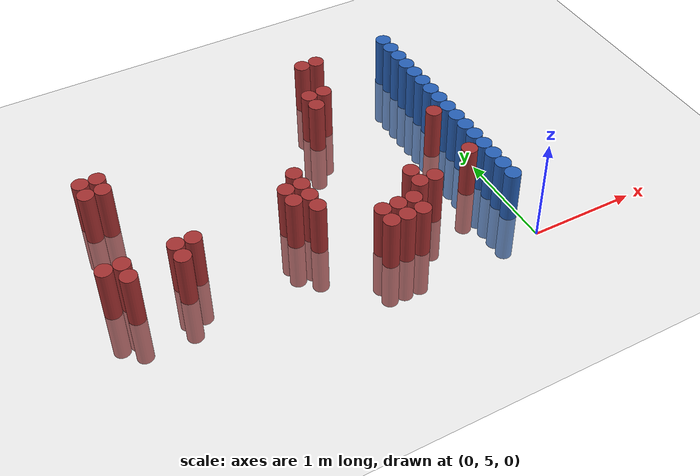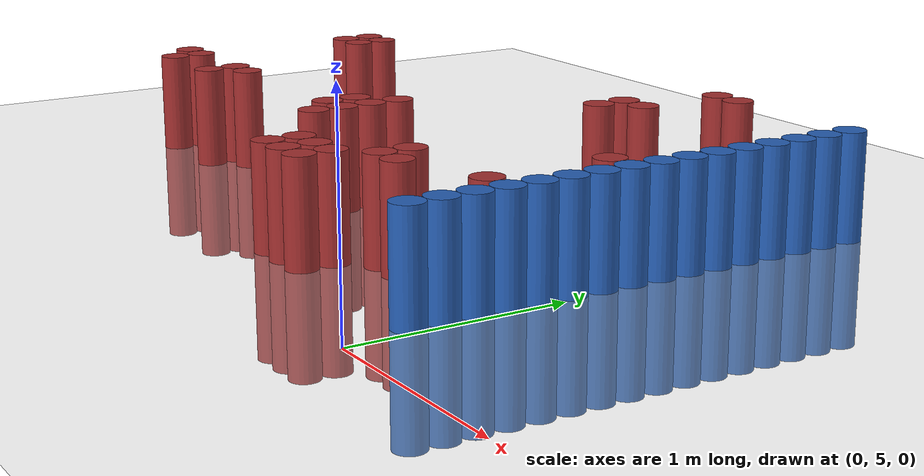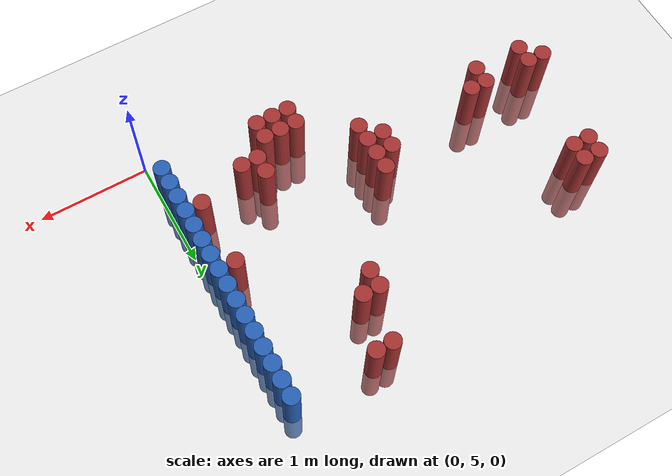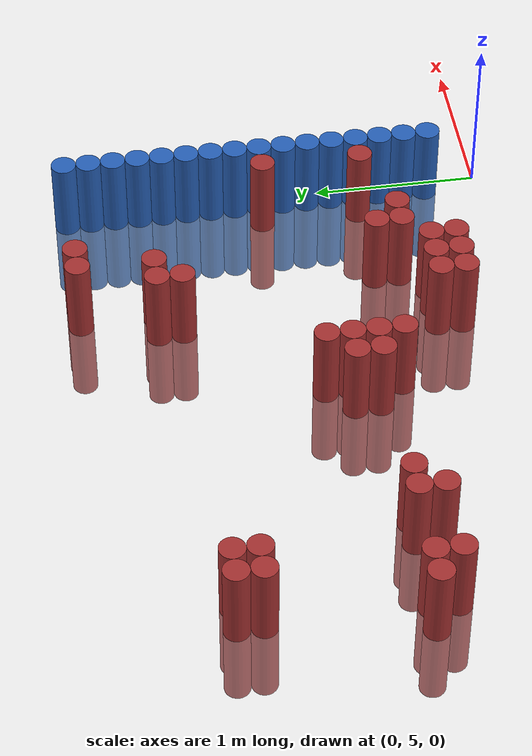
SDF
<sdf version="1.6">
 <world name="default">
  <model name="ground_plane">
   <static>1</static>
   <link name="link">
    <collision name="collision">
     <geometry><plane><normal>0 0 1</normal><size>100 100</size></plane></geometry>
     <surface><friction><ode><mu>100</mu><mu2>50</mu2></ode></friction></surface>
    </collision>
    <visual name="visual">
     <cast_shadows>0</cast_shadows>
     <geometry><plane><normal>0 0 1</normal><size>100 100</size></plane></geometry>
     <material>
      <script><uri>file://media/materials/scripts/gazebo.material</uri><name>Gazebo/Grey</name></script>
     </material>
    </visual>
   </link>
  </model>
  <model name="unit_cylinder_147">
   <static>1</static>
   <pose>-3.525000 5.925000 0.000000 0.000000 0.000000 0.000000</pose>
   <link name="link">
    <inertial>
     <mass>1</mass>
     <inertia><ixx>0.145833</ixx><ixy>0</ixy><ixz>0</ixz><iyy>0.145833</iyy><iyz>0</iyz><izz>0.125</izz></inertia>
    </inertial>
    <collision name="collision">
     <geometry><cylinder><radius>0.075000</radius><length>1</length></cylinder></geometry>
    </collision>
    <visual name="visual">
     <geometry><cylinder><radius>0.075000</radius><length>1</length></cylinder></geometry>
     <material>
      <ambient>0.648000 0.192000 0.192000 1</ambient>
      <diffuse>0.648000 0.192000 0.192000 1</diffuse>
     </material>
     <material>
      <script><name>Gazebo/Grey</name><uri>file://media/materials/scripts/gazebo.material</uri></script>
     </material>
    </visual>
   </link>
  </model>
  <model name="unit_cylinder_150">
   <static>1</static>
   <pose>-3.375000 5.775000 0.000000 0.000000 0.000000 0.000000</pose>
   <link name="link">
    <inertial>
     <mass>1</mass>
     <inertia><ixx>0.145833</ixx><ixy>0</ixy><ixz>0</ixz><iyy>0.145833</iyy><iyz>0</iyz><izz>0.125</izz></inertia>
    </inertial>
    <collision name="collision">
     <geometry><cylinder><radius>0.075000</radius><length>1</length></cylinder></geometry>
    </collision>
    <visual name="visual">
     <geometry><cylinder><radius>0.075000</radius><length>1</length></cylinder></geometry>
     <material>
      <ambient>0.648000 0.192000 0.192000 1</ambient>
      <diffuse>0.648000 0.192000 0.192000 1</diffuse>
     </material>
     <material>
      <script><name>Gazebo/Grey</name><uri>file://media/materials/scripts/gazebo.material</uri></script>
     </material>
    </visual>
   </link>
  </model>
  <model name="unit_cylinder_151">
   <static>1</static>
   <pose>-3.375000 5.925000 0.000000 0.000000 0.000000 0.000000</pose>
   <link name="link">
    <inertial>
     <mass>1</mass>
     <inertia><ixx>0.145833</ixx><ixy>0</ixy><ixz>0</ixz><iyy>0.145833</iyy><iyz>0</iyz><izz>0.125</izz></inertia>
    </inertial>
    <collision name="collision">
     <geometry><cylinder><radius>0.075000</radius><length>1</length></cylinder></geometry>
    </collision>
    <visual name="visual">
     <geometry><cylinder><radius>0.075000</radius><length>1</length></cylinder></geometry>
     <material>
      <ambient>0.648000 0.192000 0.192000 1</ambient>
      <diffuse>0.648000 0.192000 0.192000 1</diffuse>
     </material>
     <material>
      <script><name>Gazebo/Grey</name><uri>file://media/materials/scripts/gazebo.material</uri></script>
     </material>
    </visual>
   </link>
  </model>
  <model name="unit_cylinder_152">
   <static>1</static>
   <pose>-3.375000 6.825000 0.000000 0.000000 0.000000 0.000000</pose>
   <link name="link">
    <inertial>
     <mass>1</mass>
     <inertia><ixx>0.145833</ixx><ixy>0</ixy><ixz>0</ixz><iyy>0.145833</iyy><iyz>0</iyz><izz>0.125</izz></inertia>
    </inertial>
    <collision name="collision">
     <geometry><cylinder><radius>0.075000</radius><length>1</length></cylinder></geometry>
    </collision>
    <visual name="visual">
     <geometry><cylinder><radius>0.075000</radius><length>1</length></cylinder></geometry>
     <material>
      <ambient>0.648000 0.192000 0.192000 1</ambient>
      <diffuse>0.648000 0.192000 0.192000 1</diffuse>
     </material>
     <material>
      <script><name>Gazebo/Grey</name><uri>file://media/materials/scripts/gazebo.material</uri></script>
     </material>
    </visual>
   </link>
  </model>
  <model name="unit_cylinder_153">
   <static>1</static>
   <pose>-3.375000 6.975000 0.000000 0.000000 0.000000 0.000000</pose>
   <link name="link">
    <inertial>
     <mass>1</mass>
     <inertia><ixx>0.145833</ixx><ixy>0</ixy><ixz>0</ixz><iyy>0.145833</iyy><iyz>0</iyz><izz>0.125</izz></inertia>
    </inertial>
    <collision name="collision">
     <geometry><cylinder><radius>0.075000</radius><length>1</length></cylinder></geometry>
    </collision>
    <visual name="visual">
     <geometry><cylinder><radius>0.075000</radius><length>1</length></cylinder></geometry>
     <material>
      <ambient>0.648000 0.192000 0.192000 1</ambient>
      <diffuse>0.648000 0.192000 0.192000 1</diffuse>
     </material>
     <material>
      <script><name>Gazebo/Grey</name><uri>file://media/materials/scripts/gazebo.material</uri></script>
     </material>
    </visual>
   </link>
  </model>
  <model name="unit_cylinder_155">
   <static>1</static>
   <pose>-3.225000 6.825000 0.000000 0.000000 0.000000 0.000000</pose>
   <link name="link">
    <inertial>
     <mass>1</mass>
     <inertia><ixx>0.145833</ixx><ixy>0</ixy><ixz>0</ixz><iyy>0.145833</iyy><iyz>0</iyz><izz>0.125</izz></inertia>
    </inertial>
    <collision name="collision">
     <geometry><cylinder><radius>0.075000</radius><length>1</length></cylinder></geometry>
    </collision>
    <visual name="visual">
     <geometry><cylinder><radius>0.075000</radius><length>1</length></cylinder></geometry>
     <material>
      <ambient>0.648000 0.192000 0.192000 1</ambient>
      <diffuse>0.648000 0.192000 0.192000 1</diffuse>
     </material>
     <material>
      <script><name>Gazebo/Grey</name><uri>file://media/materials/scripts/gazebo.material</uri></script>
     </material>
    </visual>
   </link>
  </model>
  <model name="unit_cylinder_156">
   <static>1</static>
   <pose>-3.225000 6.975000 0.000000 0.000000 0.000000 0.000000</pose>
   <link name="link">
    <inertial>
     <mass>1</mass>
     <inertia><ixx>0.145833</ixx><ixy>0</ixy><ixz>0</ixz><iyy>0.145833</iyy><iyz>0</iyz><izz>0.125</izz></inertia>
    </inertial>
    <collision name="collision">
     <geometry><cylinder><radius>0.075000</radius><length>1</length></cylinder></geometry>
    </collision>
    <visual name="visual">
     <geometry><cylinder><radius>0.075000</radius><length>1</length></cylinder></geometry>
     <material>
      <ambient>0.648000 0.192000 0.192000 1</ambient>
      <diffuse>0.648000 0.192000 0.192000 1</diffuse>
     </material>
     <material>
      <script><name>Gazebo/Grey</name><uri>file://media/materials/scripts/gazebo.material</uri></script>
     </material>
    </visual>
   </link>
  </model>
  <model name="unit_cylinder_157">
   <static>1</static>
   <pose>-2.925000 5.775000 0.000000 0.000000 0.000000 0.000000</pose>
   <link name="link">
    <inertial>
     <mass>1</mass>
     <inertia><ixx>0.145833</ixx><ixy>0</ixy><ixz>0</ixz><iyy>0.145833</iyy><iyz>0</iyz><izz>0.125</izz></inertia>
    </inertial>
    <collision name="collision">
     <geometry><cylinder><radius>0.075000</radius><length>1</length></cylinder></geometry>
    </collision>
    <visual name="visual">
     <geometry><cylinder><radius>0.075000</radius><length>1</length></cylinder></geometry>
     <material>
      <ambient>0.648000 0.192000 0.192000 1</ambient>
      <diffuse>0.648000 0.192000 0.192000 1</diffuse>
     </material>
     <material>
      <script><name>Gazebo/Grey</name><uri>file://media/materials/scripts/gazebo.material</uri></script>
     </material>
    </visual>
   </link>
  </model>
  <model name="unit_cylinder_158">
   <static>1</static>
   <pose>-2.925000 5.925000 0.000000 0.000000 0.000000 0.000000</pose>
   <link name="link">
    <inertial>
     <mass>1</mass>
     <inertia><ixx>0.145833</ixx><ixy>0</ixy><ixz>0</ixz><iyy>0.145833</iyy><iyz>0</iyz><izz>0.125</izz></inertia>
    </inertial>
    <collision name="collision">
     <geometry><cylinder><radius>0.075000</radius><length>1</length></cylinder></geometry>
    </collision>
    <visual name="visual">
     <geometry><cylinder><radius>0.075000</radius><length>1</length></cylinder></geometry>
     <material>
      <ambient>0.648000 0.192000 0.192000 1</ambient>
      <diffuse>0.648000 0.192000 0.192000 1</diffuse>
     </material>
     <material>
      <script><name>Gazebo/Grey</name><uri>file://media/materials/scripts/gazebo.material</uri></script>
     </material>
    </visual>
   </link>
  </model>
  <model name="unit_cylinder_159">
   <static>1</static>
   <pose>-2.775000 5.925000 0.000000 0.000000 0.000000 0.000000</pose>
   <link name="link">
    <inertial>
     <mass>1</mass>
     <inertia><ixx>0.145833</ixx><ixy>0</ixy><ixz>0</ixz><iyy>0.145833</iyy><iyz>0</iyz><izz>0.125</izz></inertia>
    </inertial>
    <collision name="collision">
     <geometry><cylinder><radius>0.075000</radius><length>1</length></cylinder></geometry>
    </collision>
    <visual name="visual">
     <geometry><cylinder><radius>0.075000</radius><length>1</length></cylinder></geometry>
     <material>
      <ambient>0.648000 0.192000 0.192000 1</ambient>
      <diffuse>0.648000 0.192000 0.192000 1</diffuse>
     </material>
     <material>
      <script><name>Gazebo/Grey</name><uri>file://media/materials/scripts/gazebo.material</uri></script>
     </material>
    </visual>
   </link>
  </model>
  <model name="unit_cylinder_161">
   <static>1</static>
   <pose>-1.875000 5.925000 0.000000 0.000000 0.000000 0.000000</pose>
   <link name="link">
    <inertial>
     <mass>1</mass>
     <inertia><ixx>0.145833</ixx><ixy>0</ixy><ixz>0</ixz><iyy>0.145833</iyy><iyz>0</iyz><izz>0.125</izz></inertia>
    </inertial>
    <collision name="collision">
     <geometry><cylinder><radius>0.075000</radius><length>1</length></cylinder></geometry>
    </collision>
    <visual name="visual">
     <geometry><cylinder><radius>0.075000</radius><length>1</length></cylinder></geometry>
     <material>
      <ambient>0.648000 0.192000 0.192000 1</ambient>
      <diffuse>0.648000 0.192000 0.192000 1</diffuse>
     </material>
     <material>
      <script><name>Gazebo/Grey</name><uri>file://media/materials/scripts/gazebo.material</uri></script>
     </material>
    </visual>
   </link>
  </model>
  <model name="unit_cylinder_162">
   <static>1</static>
   <pose>-1.875000 6.075000 0.000000 0.000000 0.000000 0.000000</pose>
   <link name="link">
    <inertial>
     <mass>1</mass>
     <inertia><ixx>0.145833</ixx><ixy>0</ixy><ixz>0</ixz><iyy>0.145833</iyy><iyz>0</iyz><izz>0.125</izz></inertia>
    </inertial>
    <collision name="collision">
     <geometry><cylinder><radius>0.075000</radius><length>1</length></cylinder></geometry>
    </collision>
    <visual name="visual">
     <geometry><cylinder><radius>0.075000</radius><length>1</length></cylinder></geometry>
     <material>
      <ambient>0.648000 0.192000 0.192000 1</ambient>
      <diffuse>0.648000 0.192000 0.192000 1</diffuse>
     </material>
     <material>
      <script><name>Gazebo/Grey</name><uri>file://media/materials/scripts/gazebo.material</uri></script>
     </material>
    </visual>
   </link>
  </model>
  <model name="unit_cylinder_166">
   <static>1</static>
   <pose>-1.725000 5.775000 0.000000 0.000000 0.000000 0.000000</pose>
   <link name="link">
    <inertial>
     <mass>1</mass>
     <inertia><ixx>0.145833</ixx><ixy>0</ixy><ixz>0</ixz><iyy>0.145833</iyy><iyz>0</iyz><izz>0.125</izz></inertia>
    </inertial>
    <collision name="collision">
     <geometry><cylinder><radius>0.075000</radius><length>1</length></cylinder></geometry>
    </collision>
    <visual name="visual">
     <geometry><cylinder><radius>0.075000</radius><length>1</length></cylinder></geometry>
     <material>
      <ambient>0.648000 0.192000 0.192000 1</ambient>
      <diffuse>0.648000 0.192000 0.192000 1</diffuse>
     </material>
     <material>
      <script><name>Gazebo/Grey</name><uri>file://media/materials/scripts/gazebo.material</uri></script>
     </material>
    </visual>
   </link>
  </model>
  <model name="unit_cylinder_167">
   <static>1</static>
   <pose>-1.725000 5.925000 0.000000 0.000000 0.000000 0.000000</pose>
   <link name="link">
    <inertial>
     <mass>1</mass>
     <inertia><ixx>0.145833</ixx><ixy>0</ixy><ixz>0</ixz><iyy>0.145833</iyy><iyz>0</iyz><izz>0.125</izz></inertia>
    </inertial>
    <collision name="collision">
     <geometry><cylinder><radius>0.075000</radius><length>1</length></cylinder></geometry>
    </collision>
    <visual name="visual">
     <geometry><cylinder><radius>0.075000</radius><length>1</length></cylinder></geometry>
     <material>
      <ambient>0.648000 0.192000 0.192000 1</ambient>
      <diffuse>0.648000 0.192000 0.192000 1</diffuse>
     </material>
     <material>
      <script><name>Gazebo/Grey</name><uri>file://media/materials/scripts/gazebo.material</uri></script>
     </material>
    </visual>
   </link>
  </model>
  <model name="unit_cylinder_168">
   <static>1</static>
   <pose>-1.725000 6.075000 0.000000 0.000000 0.000000 0.000000</pose>
   <link name="link">
    <inertial>
     <mass>1</mass>
     <inertia><ixx>0.145833</ixx><ixy>0</ixy><ixz>0</ixz><iyy>0.145833</iyy><iyz>0</iyz><izz>0.125</izz></inertia>
    </inertial>
    <collision name="collision">
     <geometry><cylinder><radius>0.075000</radius><length>1</length></cylinder></geometry>
    </collision>
    <visual name="visual">
     <geometry><cylinder><radius>0.075000</radius><length>1</length></cylinder></geometry>
     <material>
      <ambient>0.648000 0.192000 0.192000 1</ambient>
      <diffuse>0.648000 0.192000 0.192000 1</diffuse>
     </material>
     <material>
      <script><name>Gazebo/Grey</name><uri>file://media/materials/scripts/gazebo.material</uri></script>
     </material>
    </visual>
   </link>
  </model>
  <model name="unit_cylinder_169">
   <static>1</static>
   <pose>-1.725000 6.225000 0.000000 0.000000 0.000000 0.000000</pose>
   <link name="link">
    <inertial>
     <mass>1</mass>
     <inertia><ixx>0.145833</ixx><ixy>0</ixy><ixz>0</ixz><iyy>0.145833</iyy><iyz>0</iyz><izz>0.125</izz></inertia>
    </inertial>
    <collision name="collision">
     <geometry><cylinder><radius>0.075000</radius><length>1</length></cylinder></geometry>
    </collision>
    <visual name="visual">
     <geometry><cylinder><radius>0.075000</radius><length>1</length></cylinder></geometry>
     <material>
      <ambient>0.648000 0.192000 0.192000 1</ambient>
      <diffuse>0.648000 0.192000 0.192000 1</diffuse>
     </material>
     <material>
      <script><name>Gazebo/Grey</name><uri>file://media/materials/scripts/gazebo.material</uri></script>
     </material>
    </visual>
   </link>
  </model>
  <model name="unit_cylinder_173">
   <static>1</static>
   <pose>-1.275000 5.325000 0.000000 0.000000 0.000000 0.000000</pose>
   <link name="link">
    <inertial>
     <mass>1</mass>
     <inertia><ixx>0.145833</ixx><ixy>0</ixy><ixz>0</ixz><iyy>0.145833</iyy><iyz>0</iyz><izz>0.125</izz></inertia>
    </inertial>
    <collision name="collision">
     <geometry><cylinder><radius>0.075000</radius><length>1</length></cylinder></geometry>
    </collision>
    <visual name="visual">
     <geometry><cylinder><radius>0.075000</radius><length>1</length></cylinder></geometry>
     <material>
      <ambient>0.648000 0.192000 0.192000 1</ambient>
      <diffuse>0.648000 0.192000 0.192000 1</diffuse>
     </material>
     <material>
      <script><name>Gazebo/Grey</name><uri>file://media/materials/scripts/gazebo.material</uri></script>
     </material>
    </visual>
   </link>
  </model>
  <model name="unit_cylinder_174">
   <static>1</static>
   <pose>-1.275000 5.475000 0.000000 0.000000 0.000000 0.000000</pose>
   <link name="link">
    <inertial>
     <mass>1</mass>
     <inertia><ixx>0.145833</ixx><ixy>0</ixy><ixz>0</ixz><iyy>0.145833</iyy><iyz>0</iyz><izz>0.125</izz></inertia>
    </inertial>
    <collision name="collision">
     <geometry><cylinder><radius>0.075000</radius><length>1</length></cylinder></geometry>
    </collision>
    <visual name="visual">
     <geometry><cylinder><radius>0.075000</radius><length>1</length></cylinder></geometry>
     <material>
      <ambient>0.648000 0.192000 0.192000 1</ambient>
      <diffuse>0.648000 0.192000 0.192000 1</diffuse>
     </material>
     <material>
      <script><name>Gazebo/Grey</name><uri>file://media/materials/scripts/gazebo.material</uri></script>
     </material>
    </visual>
   </link>
  </model>
  <model name="unit_cylinder_176">
   <static>1</static>
   <pose>-1.125000 5.325000 0.000000 0.000000 0.000000 0.000000</pose>
   <link name="link">
    <inertial>
     <mass>1</mass>
     <inertia><ixx>0.145833</ixx><ixy>0</ixy><ixz>0</ixz><iyy>0.145833</iyy><iyz>0</iyz><izz>0.125</izz></inertia>
    </inertial>
    <collision name="collision">
     <geometry><cylinder><radius>0.075000</radius><length>1</length></cylinder></geometry>
    </collision>
    <visual name="visual">
     <geometry><cylinder><radius>0.075000</radius><length>1</length></cylinder></geometry>
     <material>
      <ambient>0.648000 0.192000 0.192000 1</ambient>
      <diffuse>0.648000 0.192000 0.192000 1</diffuse>
     </material>
     <material>
      <script><name>Gazebo/Grey</name><uri>file://media/materials/scripts/gazebo.material</uri></script>
     </material>
    </visual>
   </link>
  </model>
  <model name="unit_cylinder_177">
   <static>1</static>
   <pose>-1.125000 5.475000 0.000000 0.000000 0.000000 0.000000</pose>
   <link name="link">
    <inertial>
     <mass>1</mass>
     <inertia><ixx>0.145833</ixx><ixy>0</ixy><ixz>0</ixz><iyy>0.145833</iyy><iyz>0</iyz><izz>0.125</izz></inertia>
    </inertial>
    <collision name="collision">
     <geometry><cylinder><radius>0.075000</radius><length>1</length></cylinder></geometry>
    </collision>
    <visual name="visual">
     <geometry><cylinder><radius>0.075000</radius><length>1</length></cylinder></geometry>
     <material>
      <ambient>0.648000 0.192000 0.192000 1</ambient>
      <diffuse>0.648000 0.192000 0.192000 1</diffuse>
     </material>
     <material>
      <script><name>Gazebo/Grey</name><uri>file://media/materials/scripts/gazebo.material</uri></script>
     </material>
    </visual>
   </link>
  </model>
  <model name="unit_cylinder_178">
   <static>1</static>
   <pose>-1.125000 6.975000 0.000000 0.000000 0.000000 0.000000</pose>
   <link name="link">
    <inertial>
     <mass>1</mass>
     <inertia><ixx>0.145833</ixx><ixy>0</ixy><ixz>0</ixz><iyy>0.145833</iyy><iyz>0</iyz><izz>0.125</izz></inertia>
    </inertial>
    <collision name="collision">
     <geometry><cylinder><radius>0.075000</radius><length>1</length></cylinder></geometry>
    </collision>
    <visual name="visual">
     <geometry><cylinder><radius>0.075000</radius><length>1</length></cylinder></geometry>
     <material>
      <ambient>0.648000 0.192000 0.192000 1</ambient>
      <diffuse>0.648000 0.192000 0.192000 1</diffuse>
     </material>
     <material>
      <script><name>Gazebo/Grey</name><uri>file://media/materials/scripts/gazebo.material</uri></script>
     </material>
    </visual>
   </link>
  </model>
  <model name="unit_cylinder_179">
   <static>1</static>
   <pose>-1.125000 7.125000 0.000000 0.000000 0.000000 0.000000</pose>
   <link name="link">
    <inertial>
     <mass>1</mass>
     <inertia><ixx>0.145833</ixx><ixy>0</ixy><ixz>0</ixz><iyy>0.145833</iyy><iyz>0</iyz><izz>0.125</izz></inertia>
    </inertial>
    <collision name="collision">
     <geometry><cylinder><radius>0.075000</radius><length>1</length></cylinder></geometry>
    </collision>
    <visual name="visual">
     <geometry><cylinder><radius>0.075000</radius><length>1</length></cylinder></geometry>
     <material>
      <ambient>0.648000 0.192000 0.192000 1</ambient>
      <diffuse>0.648000 0.192000 0.192000 1</diffuse>
     </material>
     <material>
      <script><name>Gazebo/Grey</name><uri>file://media/materials/scripts/gazebo.material</uri></script>
     </material>
    </visual>
   </link>
  </model>
  <model name="unit_cylinder_183">
   <static>1</static>
   <pose>-0.975000 5.325000 0.000000 0.000000 0.000000 0.000000</pose>
   <link name="link">
    <inertial>
     <mass>1</mass>
     <inertia><ixx>0.145833</ixx><ixy>0</ixy><ixz>0</ixz><iyy>0.145833</iyy><iyz>0</iyz><izz>0.125</izz></inertia>
    </inertial>
    <collision name="collision">
     <geometry><cylinder><radius>0.075000</radius><length>1</length></cylinder></geometry>
    </collision>
    <visual name="visual">
     <geometry><cylinder><radius>0.075000</radius><length>1</length></cylinder></geometry>
     <material>
      <ambient>0.648000 0.192000 0.192000 1</ambient>
      <diffuse>0.648000 0.192000 0.192000 1</diffuse>
     </material>
     <material>
      <script><name>Gazebo/Grey</name><uri>file://media/materials/scripts/gazebo.material</uri></script>
     </material>
    </visual>
   </link>
  </model>
  <model name="unit_cylinder_184">
   <static>1</static>
   <pose>-0.975000 5.475000 0.000000 0.000000 0.000000 0.000000</pose>
   <link name="link">
    <inertial>
     <mass>1</mass>
     <inertia><ixx>0.145833</ixx><ixy>0</ixy><ixz>0</ixz><iyy>0.145833</iyy><iyz>0</iyz><izz>0.125</izz></inertia>
    </inertial>
    <collision name="collision">
     <geometry><cylinder><radius>0.075000</radius><length>1</length></cylinder></geometry>
    </collision>
    <visual name="visual">
     <geometry><cylinder><radius>0.075000</radius><length>1</length></cylinder></geometry>
     <material>
      <ambient>0.648000 0.192000 0.192000 1</ambient>
      <diffuse>0.648000 0.192000 0.192000 1</diffuse>
     </material>
     <material>
      <script><name>Gazebo/Grey</name><uri>file://media/materials/scripts/gazebo.material</uri></script>
     </material>
    </visual>
   </link>
  </model>
  <model name="unit_cylinder_185">
   <static>1</static>
   <pose>-0.975000 7.125000 0.000000 0.000000 0.000000 0.000000</pose>
   <link name="link">
    <inertial>
     <mass>1</mass>
     <inertia><ixx>0.145833</ixx><ixy>0</ixy><ixz>0</ixz><iyy>0.145833</iyy><iyz>0</iyz><izz>0.125</izz></inertia>
    </inertial>
    <collision name="collision">
     <geometry><cylinder><radius>0.075000</radius><length>1</length></cylinder></geometry>
    </collision>
    <visual name="visual">
     <geometry><cylinder><radius>0.075000</radius><length>1</length></cylinder></geometry>
     <material>
      <ambient>0.648000 0.192000 0.192000 1</ambient>
      <diffuse>0.648000 0.192000 0.192000 1</diffuse>
     </material>
     <material>
      <script><name>Gazebo/Grey</name><uri>file://media/materials/scripts/gazebo.material</uri></script>
     </material>
    </visual>
   </link>
  </model>
  <model name="unit_cylinder_186">
   <static>1</static>
   <pose>-0.975000 7.575000 0.000000 0.000000 0.000000 0.000000</pose>
   <link name="link">
    <inertial>
     <mass>1</mass>
     <inertia><ixx>0.145833</ixx><ixy>0</ixy><ixz>0</ixz><iyy>0.145833</iyy><iyz>0</iyz><izz>0.125</izz></inertia>
    </inertial>
    <collision name="collision">
     <geometry><cylinder><radius>0.075000</radius><length>1</length></cylinder></geometry>
    </collision>
    <visual name="visual">
     <geometry><cylinder><radius>0.075000</radius><length>1</length></cylinder></geometry>
     <material>
      <ambient>0.648000 0.192000 0.192000 1</ambient>
      <diffuse>0.648000 0.192000 0.192000 1</diffuse>
     </material>
     <material>
      <script><name>Gazebo/Grey</name><uri>file://media/materials/scripts/gazebo.material</uri></script>
     </material>
    </visual>
   </link>
  </model>
  <model name="unit_cylinder_194">
   <static>1</static>
   <pose>-0.825000 5.625000 0.000000 0.000000 0.000000 0.000000</pose>
   <link name="link">
    <inertial>
     <mass>1</mass>
     <inertia><ixx>0.145833</ixx><ixy>0</ixy><ixz>0</ixz><iyy>0.145833</iyy><iyz>0</iyz><izz>0.125</izz></inertia>
    </inertial>
    <collision name="collision">
     <geometry><cylinder><radius>0.075000</radius><length>1</length></cylinder></geometry>
    </collision>
    <visual name="visual">
     <geometry><cylinder><radius>0.075000</radius><length>1</length></cylinder></geometry>
     <material>
      <ambient>0.648000 0.192000 0.192000 1</ambient>
      <diffuse>0.648000 0.192000 0.192000 1</diffuse>
     </material>
     <material>
      <script><name>Gazebo/Grey</name><uri>file://media/materials/scripts/gazebo.material</uri></script>
     </material>
    </visual>
   </link>
  </model>
  <model name="unit_cylinder_195">
   <static>1</static>
   <pose>-0.825000 5.775000 0.000000 0.000000 0.000000 0.000000</pose>
   <link name="link">
    <inertial>
     <mass>1</mass>
     <inertia><ixx>0.145833</ixx><ixy>0</ixy><ixz>0</ixz><iyy>0.145833</iyy><iyz>0</iyz><izz>0.125</izz></inertia>
    </inertial>
    <collision name="collision">
     <geometry><cylinder><radius>0.075000</radius><length>1</length></cylinder></geometry>
    </collision>
    <visual name="visual">
     <geometry><cylinder><radius>0.075000</radius><length>1</length></cylinder></geometry>
     <material>
      <ambient>0.648000 0.192000 0.192000 1</ambient>
      <diffuse>0.648000 0.192000 0.192000 1</diffuse>
     </material>
     <material>
      <script><name>Gazebo/Grey</name><uri>file://media/materials/scripts/gazebo.material</uri></script>
     </material>
    </visual>
   </link>
  </model>
  <model name="unit_cylinder_196">
   <static>1</static>
   <pose>-0.825000 7.575000 0.000000 0.000000 0.000000 0.000000</pose>
   <link name="link">
    <inertial>
     <mass>1</mass>
     <inertia><ixx>0.145833</ixx><ixy>0</ixy><ixz>0</ixz><iyy>0.145833</iyy><iyz>0</iyz><izz>0.125</izz></inertia>
    </inertial>
    <collision name="collision">
     <geometry><cylinder><radius>0.075000</radius><length>1</length></cylinder></geometry>
    </collision>
    <visual name="visual">
     <geometry><cylinder><radius>0.075000</radius><length>1</length></cylinder></geometry>
     <material>
      <ambient>0.648000 0.192000 0.192000 1</ambient>
      <diffuse>0.648000 0.192000 0.192000 1</diffuse>
     </material>
     <material>
      <script><name>Gazebo/Grey</name><uri>file://media/materials/scripts/gazebo.material</uri></script>
     </material>
    </visual>
   </link>
  </model>
  <model name="unit_cylinder_202">
   <static>1</static>
   <pose>-0.675000 5.625000 0.000000 0.000000 0.000000 0.000000</pose>
   <link name="link">
    <inertial>
     <mass>1</mass>
     <inertia><ixx>0.145833</ixx><ixy>0</ixy><ixz>0</ixz><iyy>0.145833</iyy><iyz>0</iyz><izz>0.125</izz></inertia>
    </inertial>
    <collision name="collision">
     <geometry><cylinder><radius>0.075000</radius><length>1</length></cylinder></geometry>
    </collision>
    <visual name="visual">
     <geometry><cylinder><radius>0.075000</radius><length>1</length></cylinder></geometry>
     <material>
      <ambient>0.648000 0.192000 0.192000 1</ambient>
      <diffuse>0.648000 0.192000 0.192000 1</diffuse>
     </material>
     <material>
      <script><name>Gazebo/Grey</name><uri>file://media/materials/scripts/gazebo.material</uri></script>
     </material>
    </visual>
   </link>
  </model>
  <model name="unit_cylinder_207">
   <static>1</static>
   <pose>-0.225000 5.775000 0.000000 0.000000 0.000000 0.000000</pose>
   <link name="link">
    <inertial>
     <mass>1</mass>
     <inertia><ixx>0.145833</ixx><ixy>0</ixy><ixz>0</ixz><iyy>0.145833</iyy><iyz>0</iyz><izz>0.125</izz></inertia>
    </inertial>
    <collision name="collision">
     <geometry><cylinder><radius>0.075000</radius><length>1</length></cylinder></geometry>
    </collision>
    <visual name="visual">
     <geometry><cylinder><radius>0.075000</radius><length>1</length></cylinder></geometry>
     <material>
      <ambient>0.648000 0.192000 0.192000 1</ambient>
      <diffuse>0.648000 0.192000 0.192000 1</diffuse>
     </material>
     <material>
      <script><name>Gazebo/Grey</name><uri>file://media/materials/scripts/gazebo.material</uri></script>
     </material>
    </visual>
   </link>
  </model>
  <model name="unit_cylinder_208">
   <static>1</static>
   <pose>-0.225000 6.375000 0.000000 0.000000 0.000000 0.000000</pose>
   <link name="link">
    <inertial>
     <mass>1</mass>
     <inertia><ixx>0.145833</ixx><ixy>0</ixy><ixz>0</ixz><iyy>0.145833</iyy><iyz>0</iyz><izz>0.125</izz></inertia>
    </inertial>
    <collision name="collision">
     <geometry><cylinder><radius>0.075000</radius><length>1</length></cylinder></geometry>
    </collision>
    <visual name="visual">
     <geometry><cylinder><radius>0.075000</radius><length>1</length></cylinder></geometry>
     <material>
      <ambient>0.648000 0.192000 0.192000 1</ambient>
      <diffuse>0.648000 0.192000 0.192000 1</diffuse>
     </material>
     <material>
      <script><name>Gazebo/Grey</name><uri>file://media/materials/scripts/gazebo.material</uri></script>
     </material>
    </visual>
   </link>
  </model>
  <model name="unit_cylinder_215">
   <static>1</static>
   <pose>-0.075000 5.325000 0.000000 0.000000 0.000000 0.000000</pose>
   <link name="link">
    <inertial>
     <mass>1</mass>
     <inertia><ixx>0.145833</ixx><ixy>0</ixy><ixz>0</ixz><iyy>0.145833</iyy><iyz>0</iyz><izz>0.125</izz></inertia>
    </inertial>
    <collision name="collision">
     <geometry><cylinder><radius>0.075000</radius><length>1</length></cylinder></geometry>
    </collision>
    <visual name="visual">
     <geometry><cylinder><radius>0.075000</radius><length>1</length></cylinder></geometry>
     <material>
      <ambient>0.152000 0.379000 0.720000 1</ambient>
      <diffuse>0.152000 0.379000 0.720000 1</diffuse>
     </material>
     <material>
      <script><name>Gazebo/Grey</name><uri>file://media/materials/scripts/gazebo.material</uri></script>
     </material>
    </visual>
   </link>
  </model>
  <model name="unit_cylinder_216">
   <static>1</static>
   <pose>-0.075000 5.475000 0.000000 0.000000 0.000000 0.000000</pose>
   <link name="link">
    <inertial>
     <mass>1</mass>
     <inertia><ixx>0.145833</ixx><ixy>0</ixy><ixz>0</ixz><iyy>0.145833</iyy><iyz>0</iyz><izz>0.125</izz></inertia>
    </inertial>
    <collision name="collision">
     <geometry><cylinder><radius>0.075000</radius><length>1</length></cylinder></geometry>
    </collision>
    <visual name="visual">
     <geometry><cylinder><radius>0.075000</radius><length>1</length></cylinder></geometry>
     <material>
      <ambient>0.152000 0.379000 0.720000 1</ambient>
      <diffuse>0.152000 0.379000 0.720000 1</diffuse>
     </material>
     <material>
      <script><name>Gazebo/Grey</name><uri>file://media/materials/scripts/gazebo.material</uri></script>
     </material>
    </visual>
   </link>
  </model>
  <model name="unit_cylinder_217">
   <static>1</static>
   <pose>-0.075000 5.625000 0.000000 0.000000 0.000000 0.000000</pose>
   <link name="link">
    <inertial>
     <mass>1</mass>
     <inertia><ixx>0.145833</ixx><ixy>0</ixy><ixz>0</ixz><iyy>0.145833</iyy><iyz>0</iyz><izz>0.125</izz></inertia>
    </inertial>
    <collision name="collision">
     <geometry><cylinder><radius>0.075000</radius><length>1</length></cylinder></geometry>
    </collision>
    <visual name="visual">
     <geometry><cylinder><radius>0.075000</radius><length>1</length></cylinder></geometry>
     <material>
      <ambient>0.152000 0.379000 0.720000 1</ambient>
      <diffuse>0.152000 0.379000 0.720000 1</diffuse>
     </material>
     <material>
      <script><name>Gazebo/Grey</name><uri>file://media/materials/scripts/gazebo.material</uri></script>
     </material>
    </visual>
   </link>
  </model>
  <model name="unit_cylinder_218">
   <static>1</static>
   <pose>-0.075000 5.775000 0.000000 0.000000 0.000000 0.000000</pose>
   <link name="link">
    <inertial>
     <mass>1</mass>
     <inertia><ixx>0.145833</ixx><ixy>0</ixy><ixz>0</ixz><iyy>0.145833</iyy><iyz>0</iyz><izz>0.125</izz></inertia>
    </inertial>
    <collision name="collision">
     <geometry><cylinder><radius>0.075000</radius><length>1</length></cylinder></geometry>
    </collision>
    <visual name="visual">
     <geometry><cylinder><radius>0.075000</radius><length>1</length></cylinder></geometry>
     <material>
      <ambient>0.152000 0.379000 0.720000 1</ambient>
      <diffuse>0.152000 0.379000 0.720000 1</diffuse>
     </material>
     <material>
      <script><name>Gazebo/Grey</name><uri>file://media/materials/scripts/gazebo.material</uri></script>
     </material>
    </visual>
   </link>
  </model>
  <model name="unit_cylinder_219">
   <static>1</static>
   <pose>-0.075000 5.925000 0.000000 0.000000 0.000000 0.000000</pose>
   <link name="link">
    <inertial>
     <mass>1</mass>
     <inertia><ixx>0.145833</ixx><ixy>0</ixy><ixz>0</ixz><iyy>0.145833</iyy><iyz>0</iyz><izz>0.125</izz></inertia>
    </inertial>
    <collision name="collision">
     <geometry><cylinder><radius>0.075000</radius><length>1</length></cylinder></geometry>
    </collision>
    <visual name="visual">
     <geometry><cylinder><radius>0.075000</radius><length>1</length></cylinder></geometry>
     <material>
      <ambient>0.152000 0.379000 0.720000 1</ambient>
      <diffuse>0.152000 0.379000 0.720000 1</diffuse>
     </material>
     <material>
      <script><name>Gazebo/Grey</name><uri>file://media/materials/scripts/gazebo.material</uri></script>
     </material>
    </visual>
   </link>
  </model>
  <model name="unit_cylinder_220">
   <static>1</static>
   <pose>-0.075000 6.075000 0.000000 0.000000 0.000000 0.000000</pose>
   <link name="link">
    <inertial>
     <mass>1</mass>
     <inertia><ixx>0.145833</ixx><ixy>0</ixy><ixz>0</ixz><iyy>0.145833</iyy><iyz>0</iyz><izz>0.125</izz></inertia>
    </inertial>
    <collision name="collision">
     <geometry><cylinder><radius>0.075000</radius><length>1</length></cylinder></geometry>
    </collision>
    <visual name="visual">
     <geometry><cylinder><radius>0.075000</radius><length>1</length></cylinder></geometry>
     <material>
      <ambient>0.152000 0.379000 0.720000 1</ambient>
      <diffuse>0.152000 0.379000 0.720000 1</diffuse>
     </material>
     <material>
      <script><name>Gazebo/Grey</name><uri>file://media/materials/scripts/gazebo.material</uri></script>
     </material>
    </visual>
   </link>
  </model>
  <model name="unit_cylinder_221">
   <static>1</static>
   <pose>-0.075000 6.225000 0.000000 0.000000 0.000000 0.000000</pose>
   <link name="link">
    <inertial>
     <mass>1</mass>
     <inertia><ixx>0.145833</ixx><ixy>0</ixy><ixz>0</ixz><iyy>0.145833</iyy><iyz>0</iyz><izz>0.125</izz></inertia>
    </inertial>
    <collision name="collision">
     <geometry><cylinder><radius>0.075000</radius><length>1</length></cylinder></geometry>
    </collision>
    <visual name="visual">
     <geometry><cylinder><radius>0.075000</radius><length>1</length></cylinder></geometry>
     <material>
      <ambient>0.152000 0.379000 0.720000 1</ambient>
      <diffuse>0.152000 0.379000 0.720000 1</diffuse>
     </material>
     <material>
      <script><name>Gazebo/Grey</name><uri>file://media/materials/scripts/gazebo.material</uri></script>
     </material>
    </visual>
   </link>
  </model>
  <model name="unit_cylinder_222">
   <static>1</static>
   <pose>-0.075000 6.375000 0.000000 0.000000 0.000000 0.000000</pose>
   <link name="link">
    <inertial>
     <mass>1</mass>
     <inertia><ixx>0.145833</ixx><ixy>0</ixy><ixz>0</ixz><iyy>0.145833</iyy><iyz>0</iyz><izz>0.125</izz></inertia>
    </inertial>
    <collision name="collision">
     <geometry><cylinder><radius>0.075000</radius><length>1</length></cylinder></geometry>
    </collision>
    <visual name="visual">
     <geometry><cylinder><radius>0.075000</radius><length>1</length></cylinder></geometry>
     <material>
      <ambient>0.152000 0.379000 0.720000 1</ambient>
      <diffuse>0.152000 0.379000 0.720000 1</diffuse>
     </material>
     <material>
      <script><name>Gazebo/Grey</name><uri>file://media/materials/scripts/gazebo.material</uri></script>
     </material>
    </visual>
   </link>
  </model>
  <model name="unit_cylinder_223">
   <static>1</static>
   <pose>-0.075000 6.525000 0.000000 0.000000 0.000000 0.000000</pose>
   <link name="link">
    <inertial>
     <mass>1</mass>
     <inertia><ixx>0.145833</ixx><ixy>0</ixy><ixz>0</ixz><iyy>0.145833</iyy><iyz>0</iyz><izz>0.125</izz></inertia>
    </inertial>
    <collision name="collision">
     <geometry><cylinder><radius>0.075000</radius><length>1</length></cylinder></geometry>
    </collision>
    <visual name="visual">
     <geometry><cylinder><radius>0.075000</radius><length>1</length></cylinder></geometry>
     <material>
      <ambient>0.152000 0.379000 0.720000 1</ambient>
      <diffuse>0.152000 0.379000 0.720000 1</diffuse>
     </material>
     <material>
      <script><name>Gazebo/Grey</name><uri>file://media/materials/scripts/gazebo.material</uri></script>
     </material>
    </visual>
   </link>
  </model>
  <model name="unit_cylinder_224">
   <static>1</static>
   <pose>-0.075000 6.675000 0.000000 0.000000 0.000000 0.000000</pose>
   <link name="link">
    <inertial>
     <mass>1</mass>
     <inertia><ixx>0.145833</ixx><ixy>0</ixy><ixz>0</ixz><iyy>0.145833</iyy><iyz>0</iyz><izz>0.125</izz></inertia>
    </inertial>
    <collision name="collision">
     <geometry><cylinder><radius>0.075000</radius><length>1</length></cylinder></geometry>
    </collision>
    <visual name="visual">
     <geometry><cylinder><radius>0.075000</radius><length>1</length></cylinder></geometry>
     <material>
      <ambient>0.152000 0.379000 0.720000 1</ambient>
      <diffuse>0.152000 0.379000 0.720000 1</diffuse>
     </material>
     <material>
      <script><name>Gazebo/Grey</name><uri>file://media/materials/scripts/gazebo.material</uri></script>
     </material>
    </visual>
   </link>
  </model>
  <model name="unit_cylinder_225">
   <static>1</static>
   <pose>-0.075000 6.825000 0.000000 0.000000 0.000000 0.000000</pose>
   <link name="link">
    <inertial>
     <mass>1</mass>
     <inertia><ixx>0.145833</ixx><ixy>0</ixy><ixz>0</ixz><iyy>0.145833</iyy><iyz>0</iyz><izz>0.125</izz></inertia>
    </inertial>
    <collision name="collision">
     <geometry><cylinder><radius>0.075000</radius><length>1</length></cylinder></geometry>
    </collision>
    <visual name="visual">
     <geometry><cylinder><radius>0.075000</radius><length>1</length></cylinder></geometry>
     <material>
      <ambient>0.152000 0.379000 0.720000 1</ambient>
      <diffuse>0.152000 0.379000 0.720000 1</diffuse>
     </material>
     <material>
      <script><name>Gazebo/Grey</name><uri>file://media/materials/scripts/gazebo.material</uri></script>
     </material>
    </visual>
   </link>
  </model>
  <model name="unit_cylinder_226">
   <static>1</static>
   <pose>-0.075000 6.975000 0.000000 0.000000 0.000000 0.000000</pose>
   <link name="link">
    <inertial>
     <mass>1</mass>
     <inertia><ixx>0.145833</ixx><ixy>0</ixy><ixz>0</ixz><iyy>0.145833</iyy><iyz>0</iyz><izz>0.125</izz></inertia>
    </inertial>
    <collision name="collision">
     <geometry><cylinder><radius>0.075000</radius><length>1</length></cylinder></geometry>
    </collision>
    <visual name="visual">
     <geometry><cylinder><radius>0.075000</radius><length>1</length></cylinder></geometry>
     <material>
      <ambient>0.152000 0.379000 0.720000 1</ambient>
      <diffuse>0.152000 0.379000 0.720000 1</diffuse>
     </material>
     <material>
      <script><name>Gazebo/Grey</name><uri>file://media/materials/scripts/gazebo.material</uri></script>
     </material>
    </visual>
   </link>
  </model>
  <model name="unit_cylinder_227">
   <static>1</static>
   <pose>-0.075000 7.125000 0.000000 0.000000 0.000000 0.000000</pose>
   <link name="link">
    <inertial>
     <mass>1</mass>
     <inertia><ixx>0.145833</ixx><ixy>0</ixy><ixz>0</ixz><iyy>0.145833</iyy><iyz>0</iyz><izz>0.125</izz></inertia>
    </inertial>
    <collision name="collision">
     <geometry><cylinder><radius>0.075000</radius><length>1</length></cylinder></geometry>
    </collision>
    <visual name="visual">
     <geometry><cylinder><radius>0.075000</radius><length>1</length></cylinder></geometry>
     <material>
      <ambient>0.152000 0.379000 0.720000 1</ambient>
      <diffuse>0.152000 0.379000 0.720000 1</diffuse>
     </material>
     <material>
      <script><name>Gazebo/Grey</name><uri>file://media/materials/scripts/gazebo.material</uri></script>
     </material>
    </visual>
   </link>
  </model>
  <model name="unit_cylinder_228">
   <static>1</static>
   <pose>-0.075000 7.275000 0.000000 0.000000 0.000000 0.000000</pose>
   <link name="link">
    <inertial>
     <mass>1</mass>
     <inertia><ixx>0.145833</ixx><ixy>0</ixy><ixz>0</ixz><iyy>0.145833</iyy><iyz>0</iyz><izz>0.125</izz></inertia>
    </inertial>
    <collision name="collision">
     <geometry><cylinder><radius>0.075000</radius><length>1</length></cylinder></geometry>
    </collision>
    <visual name="visual">
     <geometry><cylinder><radius>0.075000</radius><length>1</length></cylinder></geometry>
     <material>
      <ambient>0.152000 0.379000 0.720000 1</ambient>
      <diffuse>0.152000 0.379000 0.720000 1</diffuse>
     </material>
     <material>
      <script><name>Gazebo/Grey</name><uri>file://media/materials/scripts/gazebo.material</uri></script>
     </material>
    </visual>
   </link>
  </model>
  <model name="unit_cylinder_229">
   <static>1</static>
   <pose>-0.075000 7.425000 0.000000 0.000000 0.000000 0.000000</pose>
   <link name="link">
    <inertial>
     <mass>1</mass>
     <inertia><ixx>0.145833</ixx><ixy>0</ixy><ixz>0</ixz><iyy>0.145833</iyy><iyz>0</iyz><izz>0.125</izz></inertia>
    </inertial>
    <collision name="collision">
     <geometry><cylinder><radius>0.075000</radius><length>1</length></cylinder></geometry>
    </collision>
    <visual name="visual">
     <geometry><cylinder><radius>0.075000</radius><length>1</length></cylinder></geometry>
     <material>
      <ambient>0.152000 0.379000 0.720000 1</ambient>
      <diffuse>0.152000 0.379000 0.720000 1</diffuse>
     </material>
     <material>
      <script><name>Gazebo/Grey</name><uri>file://media/materials/scripts/gazebo.material</uri></script>
     </material>
    </visual>
   </link>
  </model>
  <model name="unit_cylinder_230">
   <static>1</static>
   <pose>-0.075000 7.575000 0.000000 0.000000 0.000000 0.000000</pose>
   <link name="link">
    <inertial>
     <mass>1</mass>
     <inertia><ixx>0.145833</ixx><ixy>0</ixy><ixz>0</ixz><iyy>0.145833</iyy><iyz>0</iyz><izz>0.125</izz></inertia>
    </inertial>
    <collision name="collision">
     <geometry><cylinder><radius>0.075000</radius><length>1</length></cylinder></geometry>
    </collision>
    <visual name="visual">
     <geometry><cylinder><radius>0.075000</radius><length>1</length></cylinder></geometry>
     <material>
      <ambient>0.152000 0.379000 0.720000 1</ambient>
      <diffuse>0.152000 0.379000 0.720000 1</diffuse>
     </material>
     <material>
      <script><name>Gazebo/Grey</name><uri>file://media/materials/scripts/gazebo.material</uri></script>
     </material>
    </visual>
   </link>
  </model>
 </world>
</sdf>
